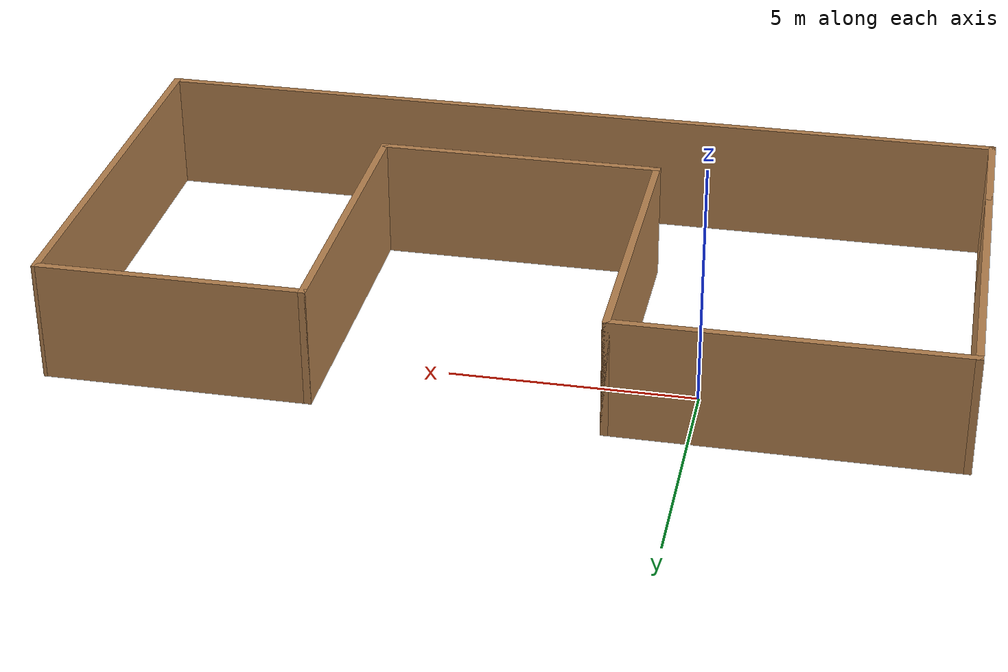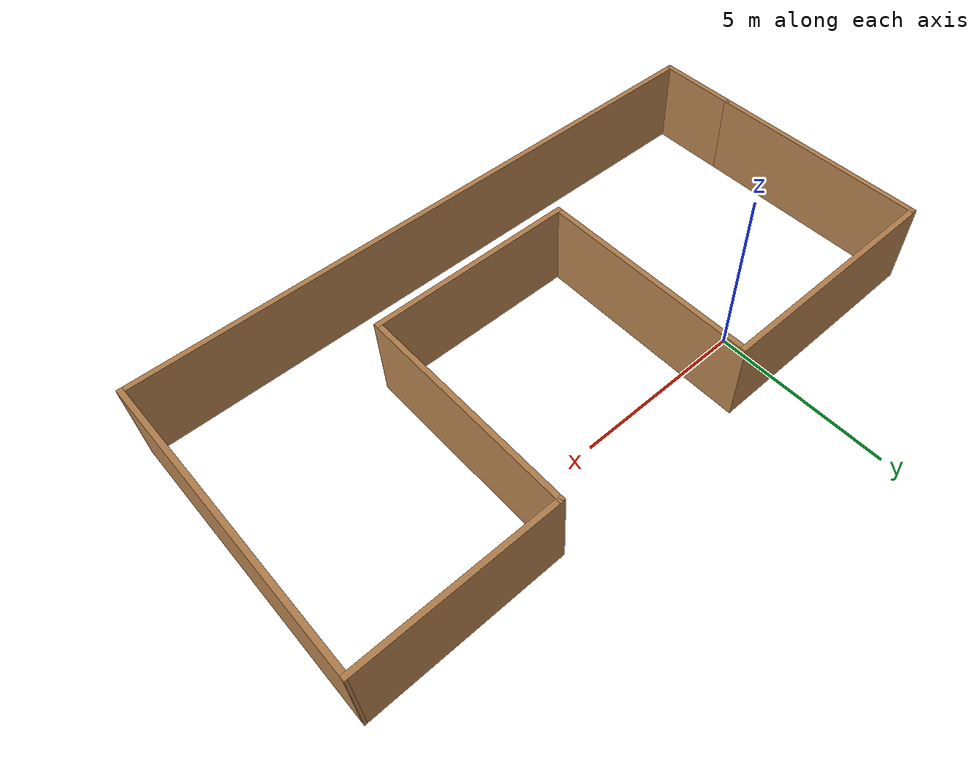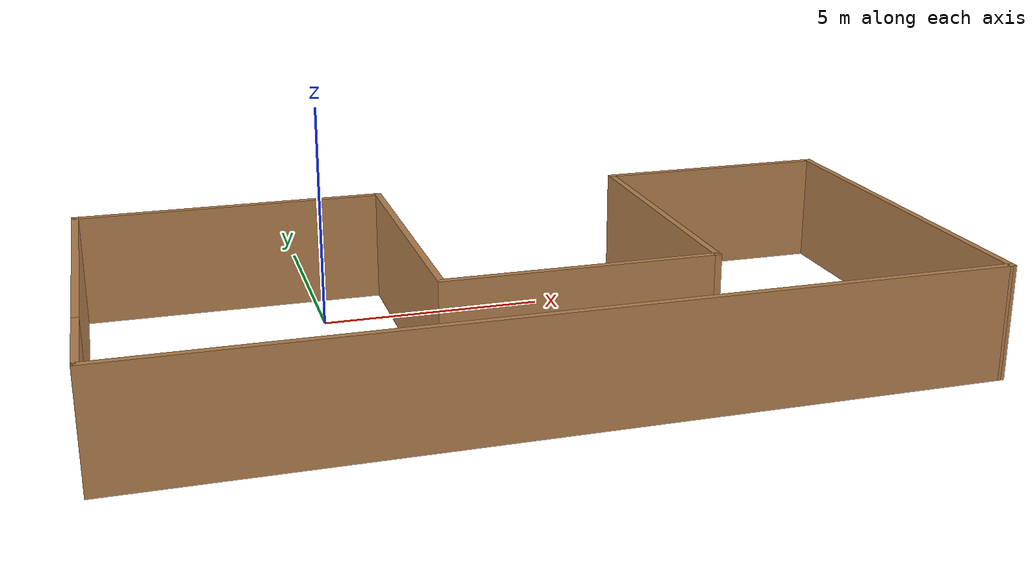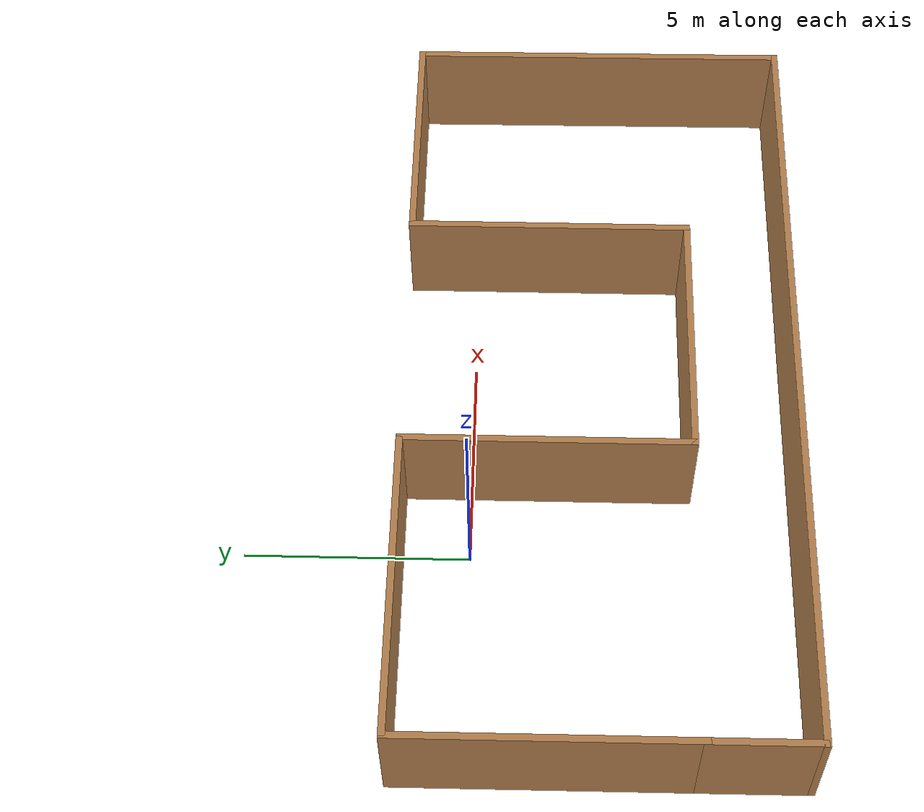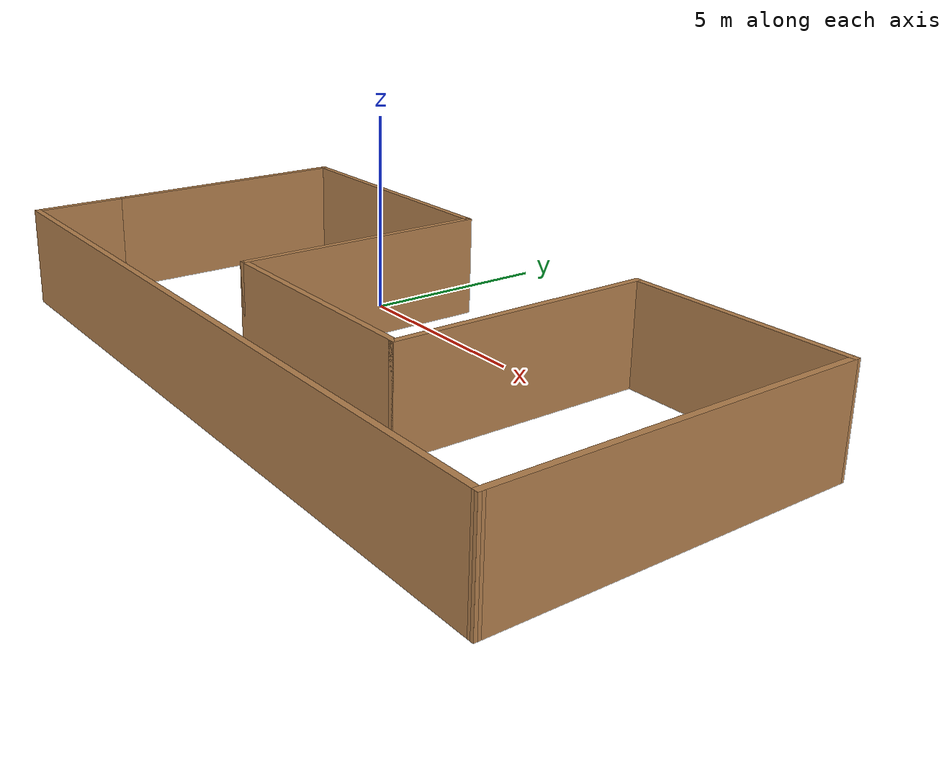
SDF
<?xml version='1.0'?>
<sdf version='1.7'>
  <model name='wall'>
    <pose>3.80885 -2.79363 0 0 -0 0</pose>
    <link name='Wall_0'>
      <collision name='Wall_0_Collision'>
        <geometry>
          <box>
            <size>6.5 0.15 2.5</size>
          </box>
        </geometry>
        <pose>0 0 1.25 0 -0 0</pose>
      </collision>
      <visual name='Wall_0_Visual'>
        <pose>0 0 1.25 0 -0 0</pose>
        <geometry>
          <box>
            <size>6.5 0.15 2.5</size>
          </box>
        </geometry>
        <material>
          <script>
            <uri>file://media/materials/scripts/gazebo.material</uri>
            <name>Gazebo/Wood</name>
          </script>
          <ambient>1 1 1 1</ambient>
        </material>
        <meta>
          <layer>0</layer>
        </meta>
      </visual>
      <pose>-9.05021 1.16439 0 0 -0 1.5708</pose>
    </link>
    <link name='Wall_1'>
      <collision name='Wall_1_Collision'>
        <geometry>
          <box>
            <size>7 0.15 2.5</size>
          </box>
        </geometry>
        <pose>0 0 1.25 0 -0 0</pose>
      </collision>
      <visual name='Wall_1_Visual'>
        <pose>0 0 1.25 0 -0 0</pose>
        <geometry>
          <box>
            <size>7 0.15 2.5</size>
          </box>
        </geometry>
        <material>
          <script>
            <uri>file://media/materials/scripts/gazebo.material</uri>
            <name>Gazebo/Wood</name>
          </script>
          <ambient>1 1 1 1</ambient>
        </material>
        <meta>
          <layer>0</layer>
        </meta>
      </visual>
      <pose>-5.62521 4.33939 0 0 -0 0</pose>
    </link>
    <link name='Wall_2'>
      <collision name='Wall_2_Collision'>
        <geometry>
          <box>
            <size>6.5 0.15 2.5</size>
          </box>
        </geometry>
        <pose>0 0 1.25 0 -0 0</pose>
      </collision>
      <visual name='Wall_2_Visual'>
        <pose>0 0 1.25 0 -0 0</pose>
        <geometry>
          <box>
            <size>6.5 0.15 2.5</size>
          </box>
        </geometry>
        <material>
          <script>
            <uri>file://media/materials/scripts/gazebo.material</uri>
            <name>Gazebo/Wood</name>
          </script>
          <ambient>1 1 1 1</ambient>
        </material>
        <meta>
          <layer>0</layer>
        </meta>
      </visual>
      <pose>-2.20022 1.16439 0 0 -0 -1.5708</pose>
    </link>
    <link name='Wall_3'>
      <collision name='Wall_3_Collision'>
        <geometry>
          <box>
            <size>6 0.15 2.5</size>
          </box>
        </geometry>
        <pose>0 0 1.25 0 -0 0</pose>
      </collision>
      <visual name='Wall_3_Visual'>
        <pose>0 0 1.25 0 -0 0</pose>
        <geometry>
          <box>
            <size>6 0.15 2.5</size>
          </box>
        </geometry>
        <material>
          <script>
            <uri>file://media/materials/scripts/gazebo.material</uri>
            <name>Gazebo/Wood</name>
          </script>
          <ambient>1 1 1 1</ambient>
        </material>
        <meta>
          <layer>0</layer>
        </meta>
      </visual>
      <pose>0.724784 -2.01061 0 0 -0 0</pose>
    </link>
    <link name='Wall_4'>
      <collision name='Wall_4_Collision'>
        <geometry>
          <box>
            <size>6.5 0.15 2.5</size>
          </box>
        </geometry>
        <pose>0 0 1.25 0 -0 0</pose>
      </collision>
      <visual name='Wall_4_Visual'>
        <pose>0 0 1.25 0 -0 0</pose>
        <geometry>
          <box>
            <size>6.5 0.15 2.5</size>
          </box>
        </geometry>
        <material>
          <script>
            <uri>file://media/materials/scripts/gazebo.material</uri>
            <name>Gazebo/Wood</name>
          </script>
          <ambient>1 1 1 1</ambient>
        </material>
        <meta>
          <layer>0</layer>
        </meta>
      </visual>
      <pose>3.64979 1.16439 0 0 -0 1.5708</pose>
    </link>
    <link name='Wall_5'>
      <collision name='Wall_5_Collision'>
        <geometry>
          <box>
            <size>5.5 0.15 2.5</size>
          </box>
        </geometry>
        <pose>0 0 1.25 0 -0 0</pose>
      </collision>
      <visual name='Wall_5_Visual'>
        <pose>0 0 1.25 0 -0 0</pose>
        <geometry>
          <box>
            <size>5.5 0.15 2.5</size>
          </box>
        </geometry>
        <material>
          <script>
            <uri>file://media/materials/scripts/gazebo.material</uri>
            <name>Gazebo/Wood</name>
          </script>
          <ambient>1 1 1 1</ambient>
        </material>
        <meta>
          <layer>0</layer>
        </meta>
      </visual>
      <pose>6.32478 4.33939 0 0 -0 0</pose>
    </link>
    <link name='Wall_6'>
      <collision name='Wall_6_Collision'>
        <geometry>
          <box>
            <size>8.82892 0.15 2.5</size>
          </box>
        </geometry>
        <pose>0 0 1.25 0 -0 0</pose>
      </collision>
      <visual name='Wall_6_Visual'>
        <pose>0 0 1.25 0 -0 0</pose>
        <geometry>
          <box>
            <size>8.82892 0.15 2.5</size>
          </box>
        </geometry>
        <material>
          <script>
            <uri>file://media/materials/scripts/gazebo.material</uri>
            <name>Gazebo/Wood</name>
          </script>
          <ambient>1 1 1 1</ambient>
        </material>
        <meta>
          <layer>0</layer>
        </meta>
      </visual>
      <pose>9.02478 0 0 0 -0 -1.56503</pose>
    </link>
    <link name='Wall_7'>
      <collision name='Wall_7_Collision'>
        <geometry>
          <box>
            <size>18.25 0.15 2.5</size>
          </box>
        </geometry>
        <pose>0 0 1.25 0 -0 0</pose>
      </collision>
      <visual name='Wall_7_Visual'>
        <pose>0 0 1.25 0 -0 0</pose>
        <geometry>
          <box>
            <size>18.25 0.15 2.5</size>
          </box>
        </geometry>
        <material>
          <script>
            <uri>file://media/materials/scripts/gazebo.material</uri>
            <name>Gazebo/Wood</name>
          </script>
          <ambient>1 1 1 1</ambient>
        </material>
        <meta>
          <layer>0</layer>
        </meta>
      </visual>
      <pose>-0.000216 -4.33939 0 0 -0 3.14159</pose>
    </link>
    <link name='Wall_8'>
      <collision name='Wall_8_Collision'>
        <geometry>
          <box>
            <size>2.44379 0.15 2.5</size>
          </box>
        </geometry>
        <pose>0 0 1.25 0 -0 0</pose>
      </collision>
      <visual name='Wall_8_Visual'>
        <pose>0 0 1.25 0 -0 0</pose>
        <geometry>
          <box>
            <size>2.44379 0.15 2.5</size>
          </box>
        </geometry>
        <material>
          <script>
            <uri>file://media/materials/scripts/gazebo.material</uri>
            <name>Gazebo/Wood</name>
          </script>
          <ambient>1 1 1 1</ambient>
        </material>
        <meta>
          <layer>0</layer>
        </meta>
      </visual>
      <pose>-9.05021 -3.15751 0 0 -0 1.5708</pose>
    </link>
    <static>1</static>
  </model>
</sdf>
